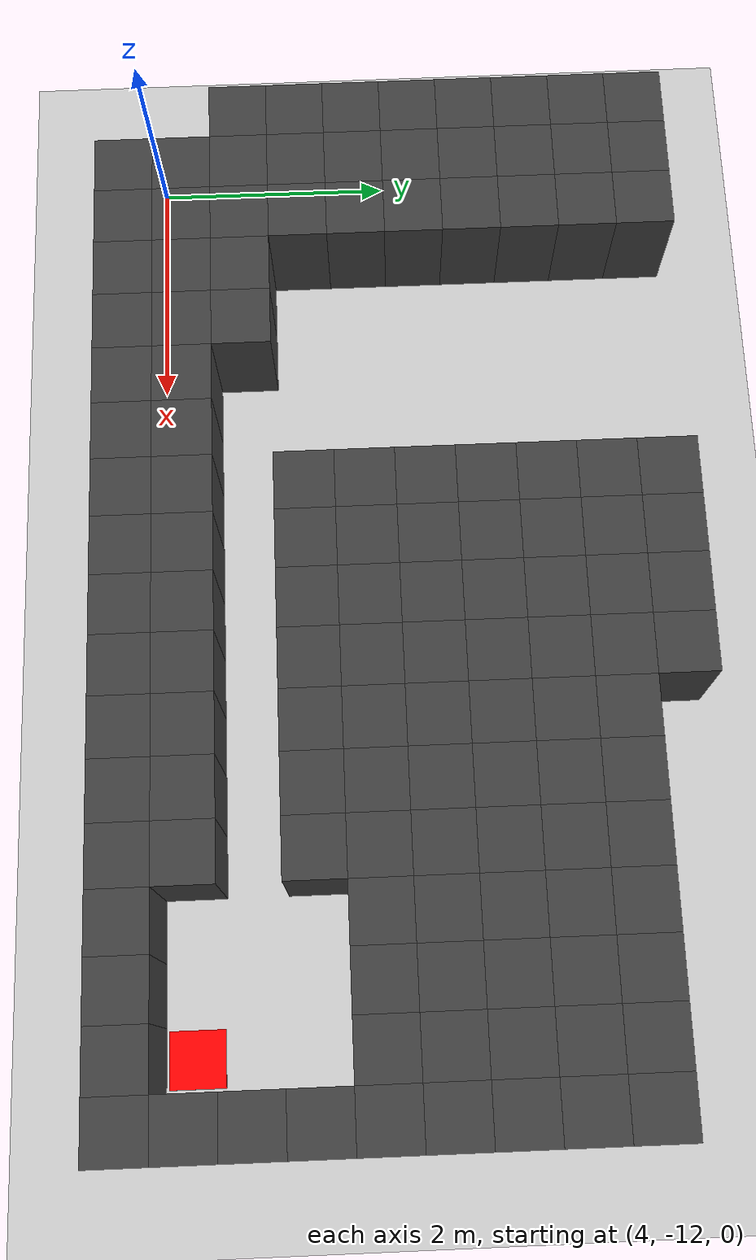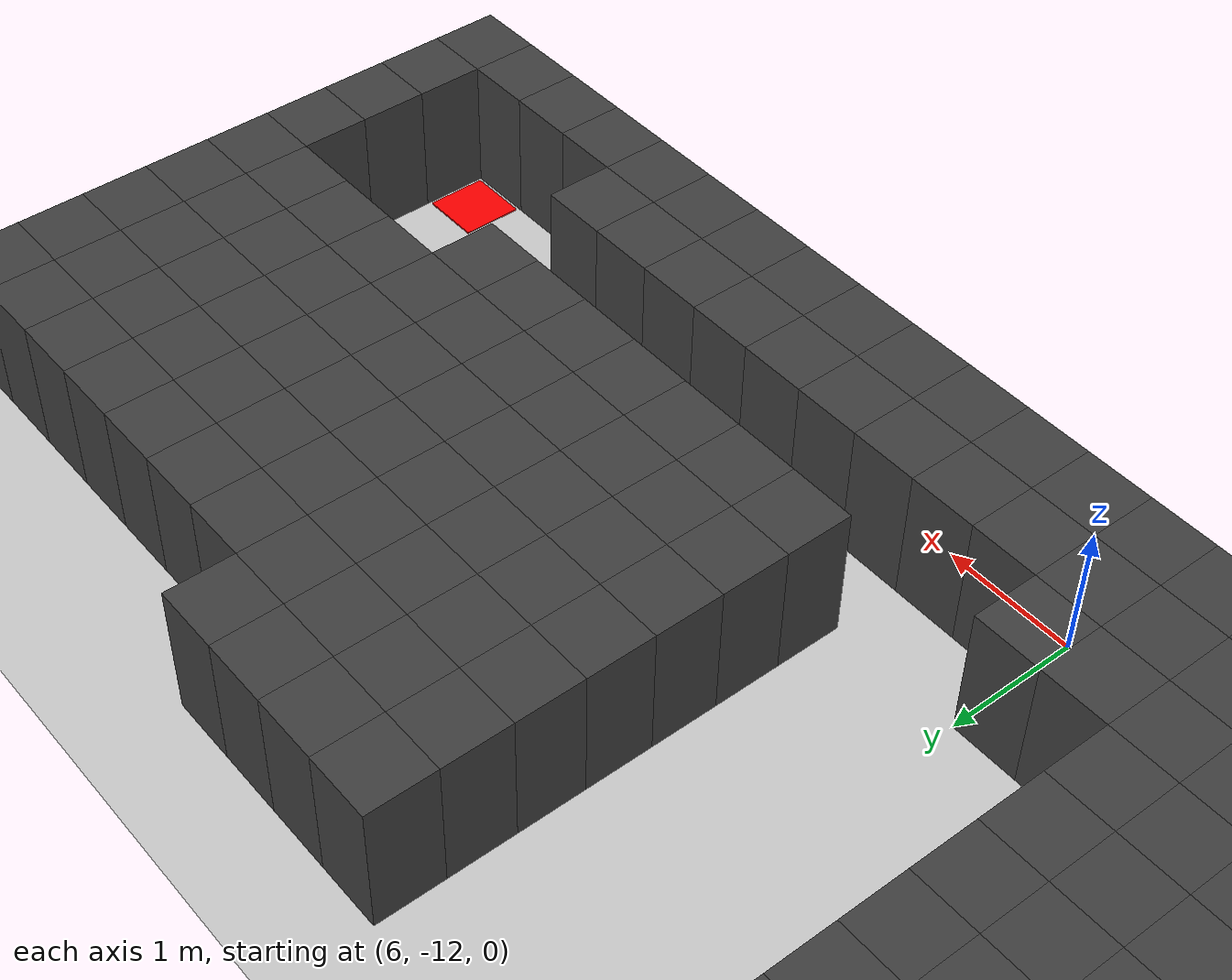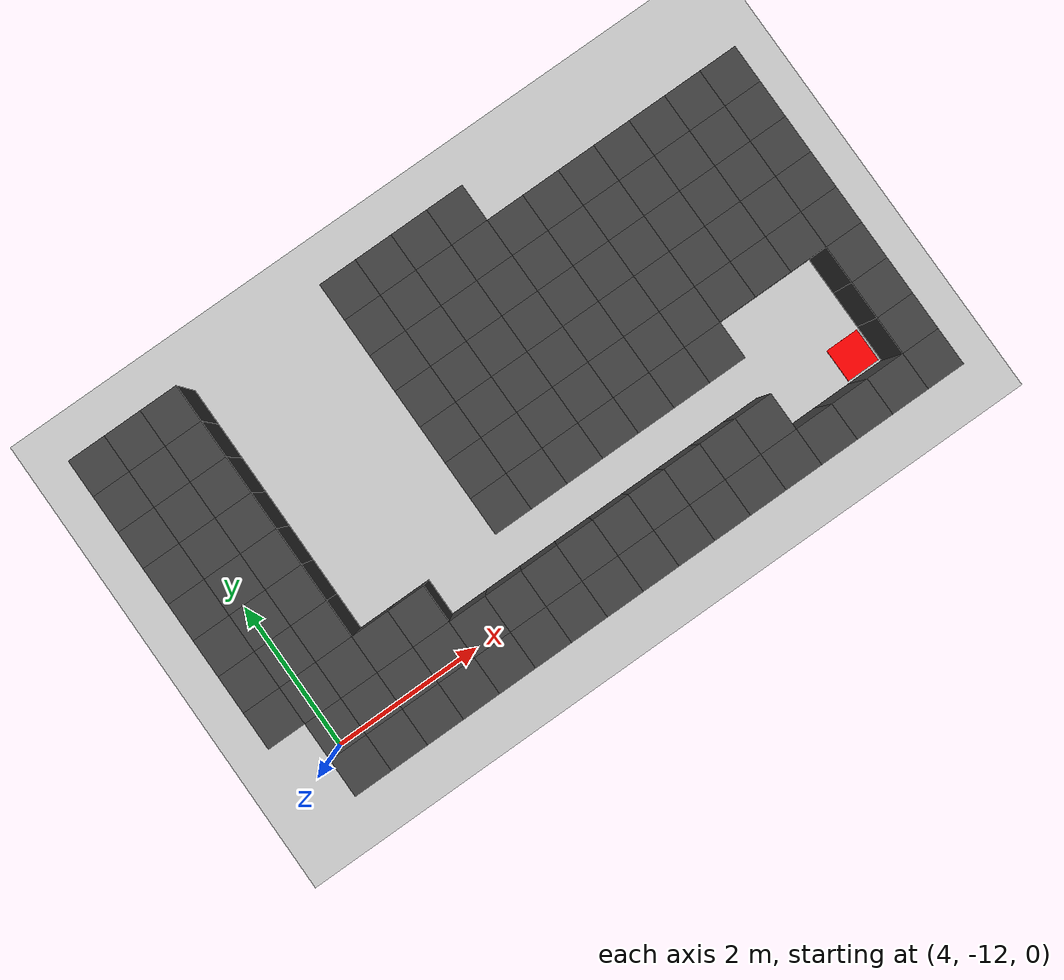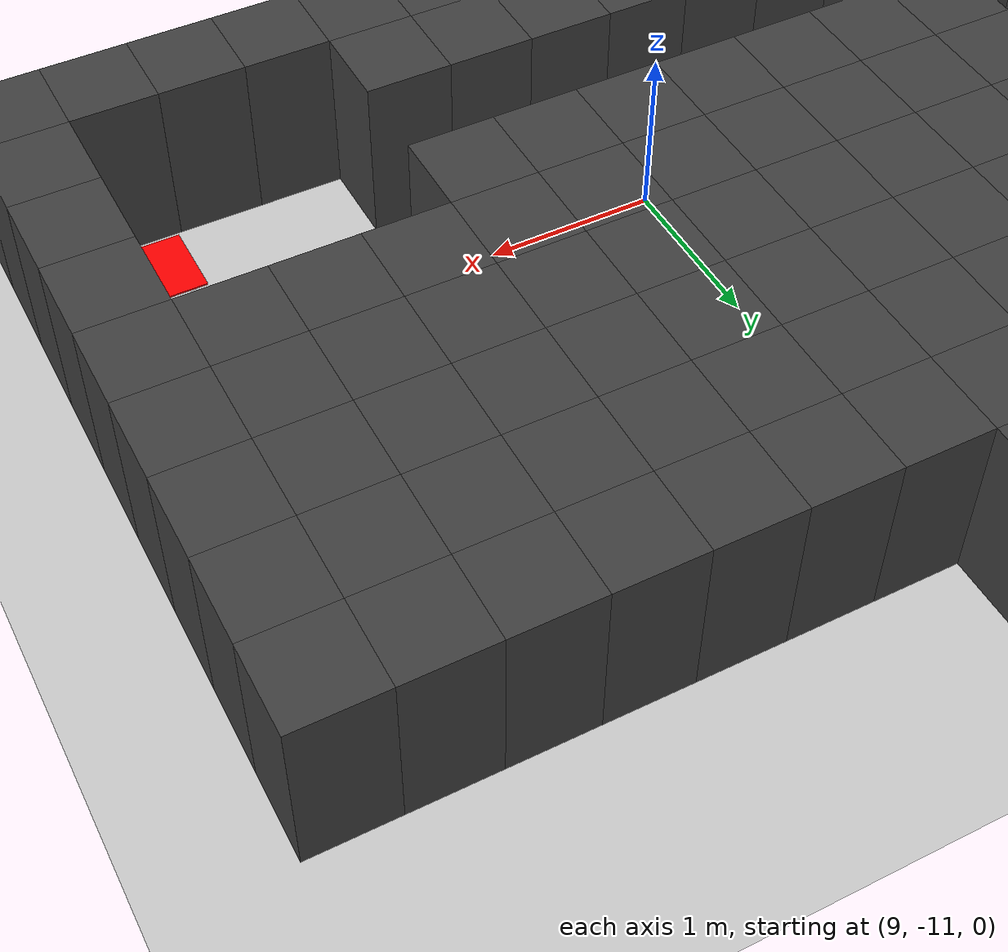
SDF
<sdf version="1.7">
 <world name="map_14190">
  <model name="ground_plane">
   <static>true</static>
   <link name="link">
    <collision name="collision">
     <geometry><plane><normal>0 0 1</normal><size>200 200</size></plane></geometry>
    </collision>
    <visual name="visual">
     <geometry><plane><normal>0 0 1</normal><size>200 200</size></plane></geometry>
     <material><ambient>0.8 0.8 0.8 1</ambient><diffuse>0.8 0.8 0.8 1</diffuse></material>
    </visual>
   </link>
  </model>
  <model name="maze_environment">
   <static>true</static>
   <link name="wall_1435">
    <pose>3.750 -7.750 0.500 0 0 0</pose>
    <collision name="col"><geometry><box><size>0.5 0.5 1.0</size></box></geometry></collision>
    <visual name="vis">
     <geometry><box><size>0.5 0.5 1.0</size></box></geometry>
     <material><ambient>0.15 0.15 0.15 1</ambient><diffuse>0.25 0.25 0.25 1</diffuse></material>
    </visual>
   </link>
   <link name="wall_1436">
    <pose>4.250 -7.750 0.500 0 0 0</pose>
    <collision name="col"><geometry><box><size>0.5 0.5 1.0</size></box></geometry></collision>
    <visual name="vis">
     <geometry><box><size>0.5 0.5 1.0</size></box></geometry>
     <material><ambient>0.15 0.15 0.15 1</ambient><diffuse>0.25 0.25 0.25 1</diffuse></material>
    </visual>
   </link>
   <link name="wall_1437">
    <pose>4.750 -7.750 0.500 0 0 0</pose>
    <collision name="col"><geometry><box><size>0.5 0.5 1.0</size></box></geometry></collision>
    <visual name="vis">
     <geometry><box><size>0.5 0.5 1.0</size></box></geometry>
     <material><ambient>0.15 0.15 0.15 1</ambient><diffuse>0.25 0.25 0.25 1</diffuse></material>
    </visual>
   </link>
   <link name="wall_1438">
    <pose>7.250 -7.750 0.500 0 0 0</pose>
    <collision name="col"><geometry><box><size>0.5 0.5 1.0</size></box></geometry></collision>
    <visual name="vis">
     <geometry><box><size>0.5 0.5 1.0</size></box></geometry>
     <material><ambient>0.15 0.15 0.15 1</ambient><diffuse>0.25 0.25 0.25 1</diffuse></material>
    </visual>
   </link>
   <link name="wall_1439">
    <pose>7.750 -7.750 0.500 0 0 0</pose>
    <collision name="col"><geometry><box><size>0.5 0.5 1.0</size></box></geometry></collision>
    <visual name="vis">
     <geometry><box><size>0.5 0.5 1.0</size></box></geometry>
     <material><ambient>0.15 0.15 0.15 1</ambient><diffuse>0.25 0.25 0.25 1</diffuse></material>
    </visual>
   </link>
   <link name="wall_1440">
    <pose>8.250 -7.750 0.500 0 0 0</pose>
    <collision name="col"><geometry><box><size>0.5 0.5 1.0</size></box></geometry></collision>
    <visual name="vis">
     <geometry><box><size>0.5 0.5 1.0</size></box></geometry>
     <material><ambient>0.15 0.15 0.15 1</ambient><diffuse>0.25 0.25 0.25 1</diffuse></material>
    </visual>
   </link>
   <link name="wall_1441">
    <pose>8.750 -7.750 0.500 0 0 0</pose>
    <collision name="col"><geometry><box><size>0.5 0.5 1.0</size></box></geometry></collision>
    <visual name="vis">
     <geometry><box><size>0.5 0.5 1.0</size></box></geometry>
     <material><ambient>0.15 0.15 0.15 1</ambient><diffuse>0.25 0.25 0.25 1</diffuse></material>
    </visual>
   </link>
   <link name="wall_1468">
    <pose>3.750 -8.250 0.500 0 0 0</pose>
    <collision name="col"><geometry><box><size>0.5 0.5 1.0</size></box></geometry></collision>
    <visual name="vis">
     <geometry><box><size>0.5 0.5 1.0</size></box></geometry>
     <material><ambient>0.15 0.15 0.15 1</ambient><diffuse>0.25 0.25 0.25 1</diffuse></material>
    </visual>
   </link>
   <link name="wall_1469">
    <pose>4.250 -8.250 0.500 0 0 0</pose>
    <collision name="col"><geometry><box><size>0.5 0.5 1.0</size></box></geometry></collision>
    <visual name="vis">
     <geometry><box><size>0.5 0.5 1.0</size></box></geometry>
     <material><ambient>0.15 0.15 0.15 1</ambient><diffuse>0.25 0.25 0.25 1</diffuse></material>
    </visual>
   </link>
   <link name="wall_1470">
    <pose>4.750 -8.250 0.500 0 0 0</pose>
    <collision name="col"><geometry><box><size>0.5 0.5 1.0</size></box></geometry></collision>
    <visual name="vis">
     <geometry><box><size>0.5 0.5 1.0</size></box></geometry>
     <material><ambient>0.15 0.15 0.15 1</ambient><diffuse>0.25 0.25 0.25 1</diffuse></material>
    </visual>
   </link>
   <link name="wall_1471">
    <pose>7.250 -8.250 0.500 0 0 0</pose>
    <collision name="col"><geometry><box><size>0.5 0.5 1.0</size></box></geometry></collision>
    <visual name="vis">
     <geometry><box><size>0.5 0.5 1.0</size></box></geometry>
     <material><ambient>0.15 0.15 0.15 1</ambient><diffuse>0.25 0.25 0.25 1</diffuse></material>
    </visual>
   </link>
   <link name="wall_1472">
    <pose>7.750 -8.250 0.500 0 0 0</pose>
    <collision name="col"><geometry><box><size>0.5 0.5 1.0</size></box></geometry></collision>
    <visual name="vis">
     <geometry><box><size>0.5 0.5 1.0</size></box></geometry>
     <material><ambient>0.15 0.15 0.15 1</ambient><diffuse>0.25 0.25 0.25 1</diffuse></material>
    </visual>
   </link>
   <link name="wall_1473">
    <pose>8.250 -8.250 0.500 0 0 0</pose>
    <collision name="col"><geometry><box><size>0.5 0.5 1.0</size></box></geometry></collision>
    <visual name="vis">
     <geometry><box><size>0.5 0.5 1.0</size></box></geometry>
     <material><ambient>0.15 0.15 0.15 1</ambient><diffuse>0.25 0.25 0.25 1</diffuse></material>
    </visual>
   </link>
   <link name="wall_1474">
    <pose>8.750 -8.250 0.500 0 0 0</pose>
    <collision name="col"><geometry><box><size>0.5 0.5 1.0</size></box></geometry></collision>
    <visual name="vis">
     <geometry><box><size>0.5 0.5 1.0</size></box></geometry>
     <material><ambient>0.15 0.15 0.15 1</ambient><diffuse>0.25 0.25 0.25 1</diffuse></material>
    </visual>
   </link>
   <link name="wall_1475">
    <pose>9.250 -8.250 0.500 0 0 0</pose>
    <collision name="col"><geometry><box><size>0.5 0.5 1.0</size></box></geometry></collision>
    <visual name="vis">
     <geometry><box><size>0.5 0.5 1.0</size></box></geometry>
     <material><ambient>0.15 0.15 0.15 1</ambient><diffuse>0.25 0.25 0.25 1</diffuse></material>
    </visual>
   </link>
   <link name="wall_1476">
    <pose>9.750 -8.250 0.500 0 0 0</pose>
    <collision name="col"><geometry><box><size>0.5 0.5 1.0</size></box></geometry></collision>
    <visual name="vis">
     <geometry><box><size>0.5 0.5 1.0</size></box></geometry>
     <material><ambient>0.15 0.15 0.15 1</ambient><diffuse>0.25 0.25 0.25 1</diffuse></material>
    </visual>
   </link>
   <link name="wall_1477">
    <pose>10.250 -8.250 0.500 0 0 0</pose>
    <collision name="col"><geometry><box><size>0.5 0.5 1.0</size></box></geometry></collision>
    <visual name="vis">
     <geometry><box><size>0.5 0.5 1.0</size></box></geometry>
     <material><ambient>0.15 0.15 0.15 1</ambient><diffuse>0.25 0.25 0.25 1</diffuse></material>
    </visual>
   </link>
   <link name="wall_1478">
    <pose>10.750 -8.250 0.500 0 0 0</pose>
    <collision name="col"><geometry><box><size>0.5 0.5 1.0</size></box></geometry></collision>
    <visual name="vis">
     <geometry><box><size>0.5 0.5 1.0</size></box></geometry>
     <material><ambient>0.15 0.15 0.15 1</ambient><diffuse>0.25 0.25 0.25 1</diffuse></material>
    </visual>
   </link>
   <link name="wall_1479">
    <pose>11.250 -8.250 0.500 0 0 0</pose>
    <collision name="col"><geometry><box><size>0.5 0.5 1.0</size></box></geometry></collision>
    <visual name="vis">
     <geometry><box><size>0.5 0.5 1.0</size></box></geometry>
     <material><ambient>0.15 0.15 0.15 1</ambient><diffuse>0.25 0.25 0.25 1</diffuse></material>
    </visual>
   </link>
   <link name="wall_1480">
    <pose>11.750 -8.250 0.500 0 0 0</pose>
    <collision name="col"><geometry><box><size>0.5 0.5 1.0</size></box></geometry></collision>
    <visual name="vis">
     <geometry><box><size>0.5 0.5 1.0</size></box></geometry>
     <material><ambient>0.15 0.15 0.15 1</ambient><diffuse>0.25 0.25 0.25 1</diffuse></material>
    </visual>
   </link>
   <link name="wall_1481">
    <pose>12.250 -8.250 0.500 0 0 0</pose>
    <collision name="col"><geometry><box><size>0.5 0.5 1.0</size></box></geometry></collision>
    <visual name="vis">
     <geometry><box><size>0.5 0.5 1.0</size></box></geometry>
     <material><ambient>0.15 0.15 0.15 1</ambient><diffuse>0.25 0.25 0.25 1</diffuse></material>
    </visual>
   </link>
   <link name="wall_1507">
    <pose>3.750 -8.750 0.500 0 0 0</pose>
    <collision name="col"><geometry><box><size>0.5 0.5 1.0</size></box></geometry></collision>
    <visual name="vis">
     <geometry><box><size>0.5 0.5 1.0</size></box></geometry>
     <material><ambient>0.15 0.15 0.15 1</ambient><diffuse>0.25 0.25 0.25 1</diffuse></material>
    </visual>
   </link>
   <link name="wall_1508">
    <pose>4.250 -8.750 0.500 0 0 0</pose>
    <collision name="col"><geometry><box><size>0.5 0.5 1.0</size></box></geometry></collision>
    <visual name="vis">
     <geometry><box><size>0.5 0.5 1.0</size></box></geometry>
     <material><ambient>0.15 0.15 0.15 1</ambient><diffuse>0.25 0.25 0.25 1</diffuse></material>
    </visual>
   </link>
   <link name="wall_1509">
    <pose>4.750 -8.750 0.500 0 0 0</pose>
    <collision name="col"><geometry><box><size>0.5 0.5 1.0</size></box></geometry></collision>
    <visual name="vis">
     <geometry><box><size>0.5 0.5 1.0</size></box></geometry>
     <material><ambient>0.15 0.15 0.15 1</ambient><diffuse>0.25 0.25 0.25 1</diffuse></material>
    </visual>
   </link>
   <link name="wall_1510">
    <pose>7.250 -8.750 0.500 0 0 0</pose>
    <collision name="col"><geometry><box><size>0.5 0.5 1.0</size></box></geometry></collision>
    <visual name="vis">
     <geometry><box><size>0.5 0.5 1.0</size></box></geometry>
     <material><ambient>0.15 0.15 0.15 1</ambient><diffuse>0.25 0.25 0.25 1</diffuse></material>
    </visual>
   </link>
   <link name="wall_1511">
    <pose>7.750 -8.750 0.500 0 0 0</pose>
    <collision name="col"><geometry><box><size>0.5 0.5 1.0</size></box></geometry></collision>
    <visual name="vis">
     <geometry><box><size>0.5 0.5 1.0</size></box></geometry>
     <material><ambient>0.15 0.15 0.15 1</ambient><diffuse>0.25 0.25 0.25 1</diffuse></material>
    </visual>
   </link>
   <link name="wall_1512">
    <pose>8.250 -8.750 0.500 0 0 0</pose>
    <collision name="col"><geometry><box><size>0.5 0.5 1.0</size></box></geometry></collision>
    <visual name="vis">
     <geometry><box><size>0.5 0.5 1.0</size></box></geometry>
     <material><ambient>0.15 0.15 0.15 1</ambient><diffuse>0.25 0.25 0.25 1</diffuse></material>
    </visual>
   </link>
   <link name="wall_1513">
    <pose>8.750 -8.750 0.500 0 0 0</pose>
    <collision name="col"><geometry><box><size>0.5 0.5 1.0</size></box></geometry></collision>
    <visual name="vis">
     <geometry><box><size>0.5 0.5 1.0</size></box></geometry>
     <material><ambient>0.15 0.15 0.15 1</ambient><diffuse>0.25 0.25 0.25 1</diffuse></material>
    </visual>
   </link>
   <link name="wall_1514">
    <pose>9.250 -8.750 0.500 0 0 0</pose>
    <collision name="col"><geometry><box><size>0.5 0.5 1.0</size></box></geometry></collision>
    <visual name="vis">
     <geometry><box><size>0.5 0.5 1.0</size></box></geometry>
     <material><ambient>0.15 0.15 0.15 1</ambient><diffuse>0.25 0.25 0.25 1</diffuse></material>
    </visual>
   </link>
   <link name="wall_1515">
    <pose>9.750 -8.750 0.500 0 0 0</pose>
    <collision name="col"><geometry><box><size>0.5 0.5 1.0</size></box></geometry></collision>
    <visual name="vis">
     <geometry><box><size>0.5 0.5 1.0</size></box></geometry>
     <material><ambient>0.15 0.15 0.15 1</ambient><diffuse>0.25 0.25 0.25 1</diffuse></material>
    </visual>
   </link>
   <link name="wall_1516">
    <pose>10.250 -8.750 0.500 0 0 0</pose>
    <collision name="col"><geometry><box><size>0.5 0.5 1.0</size></box></geometry></collision>
    <visual name="vis">
     <geometry><box><size>0.5 0.5 1.0</size></box></geometry>
     <material><ambient>0.15 0.15 0.15 1</ambient><diffuse>0.25 0.25 0.25 1</diffuse></material>
    </visual>
   </link>
   <link name="wall_1517">
    <pose>10.750 -8.750 0.500 0 0 0</pose>
    <collision name="col"><geometry><box><size>0.5 0.5 1.0</size></box></geometry></collision>
    <visual name="vis">
     <geometry><box><size>0.5 0.5 1.0</size></box></geometry>
     <material><ambient>0.15 0.15 0.15 1</ambient><diffuse>0.25 0.25 0.25 1</diffuse></material>
    </visual>
   </link>
   <link name="wall_1518">
    <pose>11.250 -8.750 0.500 0 0 0</pose>
    <collision name="col"><geometry><box><size>0.5 0.5 1.0</size></box></geometry></collision>
    <visual name="vis">
     <geometry><box><size>0.5 0.5 1.0</size></box></geometry>
     <material><ambient>0.15 0.15 0.15 1</ambient><diffuse>0.25 0.25 0.25 1</diffuse></material>
    </visual>
   </link>
   <link name="wall_1519">
    <pose>11.750 -8.750 0.500 0 0 0</pose>
    <collision name="col"><geometry><box><size>0.5 0.5 1.0</size></box></geometry></collision>
    <visual name="vis">
     <geometry><box><size>0.5 0.5 1.0</size></box></geometry>
     <material><ambient>0.15 0.15 0.15 1</ambient><diffuse>0.25 0.25 0.25 1</diffuse></material>
    </visual>
   </link>
   <link name="wall_1520">
    <pose>12.250 -8.750 0.500 0 0 0</pose>
    <collision name="col"><geometry><box><size>0.5 0.5 1.0</size></box></geometry></collision>
    <visual name="vis">
     <geometry><box><size>0.5 0.5 1.0</size></box></geometry>
     <material><ambient>0.15 0.15 0.15 1</ambient><diffuse>0.25 0.25 0.25 1</diffuse></material>
    </visual>
   </link>
   <link name="wall_1540">
    <pose>3.750 -9.250 0.500 0 0 0</pose>
    <collision name="col"><geometry><box><size>0.5 0.5 1.0</size></box></geometry></collision>
    <visual name="vis">
     <geometry><box><size>0.5 0.5 1.0</size></box></geometry>
     <material><ambient>0.15 0.15 0.15 1</ambient><diffuse>0.25 0.25 0.25 1</diffuse></material>
    </visual>
   </link>
   <link name="wall_1541">
    <pose>4.250 -9.250 0.500 0 0 0</pose>
    <collision name="col"><geometry><box><size>0.5 0.5 1.0</size></box></geometry></collision>
    <visual name="vis">
     <geometry><box><size>0.5 0.5 1.0</size></box></geometry>
     <material><ambient>0.15 0.15 0.15 1</ambient><diffuse>0.25 0.25 0.25 1</diffuse></material>
    </visual>
   </link>
   <link name="wall_1542">
    <pose>4.750 -9.250 0.500 0 0 0</pose>
    <collision name="col"><geometry><box><size>0.5 0.5 1.0</size></box></geometry></collision>
    <visual name="vis">
     <geometry><box><size>0.5 0.5 1.0</size></box></geometry>
     <material><ambient>0.15 0.15 0.15 1</ambient><diffuse>0.25 0.25 0.25 1</diffuse></material>
    </visual>
   </link>
   <link name="wall_1543">
    <pose>7.250 -9.250 0.500 0 0 0</pose>
    <collision name="col"><geometry><box><size>0.5 0.5 1.0</size></box></geometry></collision>
    <visual name="vis">
     <geometry><box><size>0.5 0.5 1.0</size></box></geometry>
     <material><ambient>0.15 0.15 0.15 1</ambient><diffuse>0.25 0.25 0.25 1</diffuse></material>
    </visual>
   </link>
   <link name="wall_1544">
    <pose>7.750 -9.250 0.500 0 0 0</pose>
    <collision name="col"><geometry><box><size>0.5 0.5 1.0</size></box></geometry></collision>
    <visual name="vis">
     <geometry><box><size>0.5 0.5 1.0</size></box></geometry>
     <material><ambient>0.15 0.15 0.15 1</ambient><diffuse>0.25 0.25 0.25 1</diffuse></material>
    </visual>
   </link>
   <link name="wall_1545">
    <pose>8.250 -9.250 0.500 0 0 0</pose>
    <collision name="col"><geometry><box><size>0.5 0.5 1.0</size></box></geometry></collision>
    <visual name="vis">
     <geometry><box><size>0.5 0.5 1.0</size></box></geometry>
     <material><ambient>0.15 0.15 0.15 1</ambient><diffuse>0.25 0.25 0.25 1</diffuse></material>
    </visual>
   </link>
   <link name="wall_1546">
    <pose>8.750 -9.250 0.500 0 0 0</pose>
    <collision name="col"><geometry><box><size>0.5 0.5 1.0</size></box></geometry></collision>
    <visual name="vis">
     <geometry><box><size>0.5 0.5 1.0</size></box></geometry>
     <material><ambient>0.15 0.15 0.15 1</ambient><diffuse>0.25 0.25 0.25 1</diffuse></material>
    </visual>
   </link>
   <link name="wall_1547">
    <pose>9.250 -9.250 0.500 0 0 0</pose>
    <collision name="col"><geometry><box><size>0.5 0.5 1.0</size></box></geometry></collision>
    <visual name="vis">
     <geometry><box><size>0.5 0.5 1.0</size></box></geometry>
     <material><ambient>0.15 0.15 0.15 1</ambient><diffuse>0.25 0.25 0.25 1</diffuse></material>
    </visual>
   </link>
   <link name="wall_1548">
    <pose>9.750 -9.250 0.500 0 0 0</pose>
    <collision name="col"><geometry><box><size>0.5 0.5 1.0</size></box></geometry></collision>
    <visual name="vis">
     <geometry><box><size>0.5 0.5 1.0</size></box></geometry>
     <material><ambient>0.15 0.15 0.15 1</ambient><diffuse>0.25 0.25 0.25 1</diffuse></material>
    </visual>
   </link>
   <link name="wall_1549">
    <pose>10.250 -9.250 0.500 0 0 0</pose>
    <collision name="col"><geometry><box><size>0.5 0.5 1.0</size></box></geometry></collision>
    <visual name="vis">
     <geometry><box><size>0.5 0.5 1.0</size></box></geometry>
     <material><ambient>0.15 0.15 0.15 1</ambient><diffuse>0.25 0.25 0.25 1</diffuse></material>
    </visual>
   </link>
   <link name="wall_1550">
    <pose>10.750 -9.250 0.500 0 0 0</pose>
    <collision name="col"><geometry><box><size>0.5 0.5 1.0</size></box></geometry></collision>
    <visual name="vis">
     <geometry><box><size>0.5 0.5 1.0</size></box></geometry>
     <material><ambient>0.15 0.15 0.15 1</ambient><diffuse>0.25 0.25 0.25 1</diffuse></material>
    </visual>
   </link>
   <link name="wall_1551">
    <pose>11.250 -9.250 0.500 0 0 0</pose>
    <collision name="col"><geometry><box><size>0.5 0.5 1.0</size></box></geometry></collision>
    <visual name="vis">
     <geometry><box><size>0.5 0.5 1.0</size></box></geometry>
     <material><ambient>0.15 0.15 0.15 1</ambient><diffuse>0.25 0.25 0.25 1</diffuse></material>
    </visual>
   </link>
   <link name="wall_1552">
    <pose>11.750 -9.250 0.500 0 0 0</pose>
    <collision name="col"><geometry><box><size>0.5 0.5 1.0</size></box></geometry></collision>
    <visual name="vis">
     <geometry><box><size>0.5 0.5 1.0</size></box></geometry>
     <material><ambient>0.15 0.15 0.15 1</ambient><diffuse>0.25 0.25 0.25 1</diffuse></material>
    </visual>
   </link>
   <link name="wall_1553">
    <pose>12.250 -9.250 0.500 0 0 0</pose>
    <collision name="col"><geometry><box><size>0.5 0.5 1.0</size></box></geometry></collision>
    <visual name="vis">
     <geometry><box><size>0.5 0.5 1.0</size></box></geometry>
     <material><ambient>0.15 0.15 0.15 1</ambient><diffuse>0.25 0.25 0.25 1</diffuse></material>
    </visual>
   </link>
   <link name="wall_1572">
    <pose>3.750 -9.750 0.500 0 0 0</pose>
    <collision name="col"><geometry><box><size>0.5 0.5 1.0</size></box></geometry></collision>
    <visual name="vis">
     <geometry><box><size>0.5 0.5 1.0</size></box></geometry>
     <material><ambient>0.15 0.15 0.15 1</ambient><diffuse>0.25 0.25 0.25 1</diffuse></material>
    </visual>
   </link>
   <link name="wall_1573">
    <pose>4.250 -9.750 0.500 0 0 0</pose>
    <collision name="col"><geometry><box><size>0.5 0.5 1.0</size></box></geometry></collision>
    <visual name="vis">
     <geometry><box><size>0.5 0.5 1.0</size></box></geometry>
     <material><ambient>0.15 0.15 0.15 1</ambient><diffuse>0.25 0.25 0.25 1</diffuse></material>
    </visual>
   </link>
   <link name="wall_1574">
    <pose>4.750 -9.750 0.500 0 0 0</pose>
    <collision name="col"><geometry><box><size>0.5 0.5 1.0</size></box></geometry></collision>
    <visual name="vis">
     <geometry><box><size>0.5 0.5 1.0</size></box></geometry>
     <material><ambient>0.15 0.15 0.15 1</ambient><diffuse>0.25 0.25 0.25 1</diffuse></material>
    </visual>
   </link>
   <link name="wall_1575">
    <pose>7.250 -9.750 0.500 0 0 0</pose>
    <collision name="col"><geometry><box><size>0.5 0.5 1.0</size></box></geometry></collision>
    <visual name="vis">
     <geometry><box><size>0.5 0.5 1.0</size></box></geometry>
     <material><ambient>0.15 0.15 0.15 1</ambient><diffuse>0.25 0.25 0.25 1</diffuse></material>
    </visual>
   </link>
   <link name="wall_1576">
    <pose>7.750 -9.750 0.500 0 0 0</pose>
    <collision name="col"><geometry><box><size>0.5 0.5 1.0</size></box></geometry></collision>
    <visual name="vis">
     <geometry><box><size>0.5 0.5 1.0</size></box></geometry>
     <material><ambient>0.15 0.15 0.15 1</ambient><diffuse>0.25 0.25 0.25 1</diffuse></material>
    </visual>
   </link>
   <link name="wall_1577">
    <pose>8.250 -9.750 0.500 0 0 0</pose>
    <collision name="col"><geometry><box><size>0.5 0.5 1.0</size></box></geometry></collision>
    <visual name="vis">
     <geometry><box><size>0.5 0.5 1.0</size></box></geometry>
     <material><ambient>0.15 0.15 0.15 1</ambient><diffuse>0.25 0.25 0.25 1</diffuse></material>
    </visual>
   </link>
   <link name="wall_1578">
    <pose>8.750 -9.750 0.500 0 0 0</pose>
    <collision name="col"><geometry><box><size>0.5 0.5 1.0</size></box></geometry></collision>
    <visual name="vis">
     <geometry><box><size>0.5 0.5 1.0</size></box></geometry>
     <material><ambient>0.15 0.15 0.15 1</ambient><diffuse>0.25 0.25 0.25 1</diffuse></material>
    </visual>
   </link>
   <link name="wall_1579">
    <pose>9.250 -9.750 0.500 0 0 0</pose>
    <collision name="col"><geometry><box><size>0.5 0.5 1.0</size></box></geometry></collision>
    <visual name="vis">
     <geometry><box><size>0.5 0.5 1.0</size></box></geometry>
     <material><ambient>0.15 0.15 0.15 1</ambient><diffuse>0.25 0.25 0.25 1</diffuse></material>
    </visual>
   </link>
   <link name="wall_1580">
    <pose>9.750 -9.750 0.500 0 0 0</pose>
    <collision name="col"><geometry><box><size>0.5 0.5 1.0</size></box></geometry></collision>
    <visual name="vis">
     <geometry><box><size>0.5 0.5 1.0</size></box></geometry>
     <material><ambient>0.15 0.15 0.15 1</ambient><diffuse>0.25 0.25 0.25 1</diffuse></material>
    </visual>
   </link>
   <link name="wall_1581">
    <pose>10.250 -9.750 0.500 0 0 0</pose>
    <collision name="col"><geometry><box><size>0.5 0.5 1.0</size></box></geometry></collision>
    <visual name="vis">
     <geometry><box><size>0.5 0.5 1.0</size></box></geometry>
     <material><ambient>0.15 0.15 0.15 1</ambient><diffuse>0.25 0.25 0.25 1</diffuse></material>
    </visual>
   </link>
   <link name="wall_1582">
    <pose>10.750 -9.750 0.500 0 0 0</pose>
    <collision name="col"><geometry><box><size>0.5 0.5 1.0</size></box></geometry></collision>
    <visual name="vis">
     <geometry><box><size>0.5 0.5 1.0</size></box></geometry>
     <material><ambient>0.15 0.15 0.15 1</ambient><diffuse>0.25 0.25 0.25 1</diffuse></material>
    </visual>
   </link>
   <link name="wall_1583">
    <pose>11.250 -9.750 0.500 0 0 0</pose>
    <collision name="col"><geometry><box><size>0.5 0.5 1.0</size></box></geometry></collision>
    <visual name="vis">
     <geometry><box><size>0.5 0.5 1.0</size></box></geometry>
     <material><ambient>0.15 0.15 0.15 1</ambient><diffuse>0.25 0.25 0.25 1</diffuse></material>
    </visual>
   </link>
   <link name="wall_1584">
    <pose>11.750 -9.750 0.500 0 0 0</pose>
    <collision name="col"><geometry><box><size>0.5 0.5 1.0</size></box></geometry></collision>
    <visual name="vis">
     <geometry><box><size>0.5 0.5 1.0</size></box></geometry>
     <material><ambient>0.15 0.15 0.15 1</ambient><diffuse>0.25 0.25 0.25 1</diffuse></material>
    </visual>
   </link>
   <link name="wall_1585">
    <pose>12.250 -9.750 0.500 0 0 0</pose>
    <collision name="col"><geometry><box><size>0.5 0.5 1.0</size></box></geometry></collision>
    <visual name="vis">
     <geometry><box><size>0.5 0.5 1.0</size></box></geometry>
     <material><ambient>0.15 0.15 0.15 1</ambient><diffuse>0.25 0.25 0.25 1</diffuse></material>
    </visual>
   </link>
   <link name="wall_1605">
    <pose>3.750 -10.250 0.500 0 0 0</pose>
    <collision name="col"><geometry><box><size>0.5 0.5 1.0</size></box></geometry></collision>
    <visual name="vis">
     <geometry><box><size>0.5 0.5 1.0</size></box></geometry>
     <material><ambient>0.15 0.15 0.15 1</ambient><diffuse>0.25 0.25 0.25 1</diffuse></material>
    </visual>
   </link>
   <link name="wall_1606">
    <pose>4.250 -10.250 0.500 0 0 0</pose>
    <collision name="col"><geometry><box><size>0.5 0.5 1.0</size></box></geometry></collision>
    <visual name="vis">
     <geometry><box><size>0.5 0.5 1.0</size></box></geometry>
     <material><ambient>0.15 0.15 0.15 1</ambient><diffuse>0.25 0.25 0.25 1</diffuse></material>
    </visual>
   </link>
   <link name="wall_1607">
    <pose>4.750 -10.250 0.500 0 0 0</pose>
    <collision name="col"><geometry><box><size>0.5 0.5 1.0</size></box></geometry></collision>
    <visual name="vis">
     <geometry><box><size>0.5 0.5 1.0</size></box></geometry>
     <material><ambient>0.15 0.15 0.15 1</ambient><diffuse>0.25 0.25 0.25 1</diffuse></material>
    </visual>
   </link>
   <link name="wall_1608">
    <pose>7.250 -10.250 0.500 0 0 0</pose>
    <collision name="col"><geometry><box><size>0.5 0.5 1.0</size></box></geometry></collision>
    <visual name="vis">
     <geometry><box><size>0.5 0.5 1.0</size></box></geometry>
     <material><ambient>0.15 0.15 0.15 1</ambient><diffuse>0.25 0.25 0.25 1</diffuse></material>
    </visual>
   </link>
   <link name="wall_1609">
    <pose>7.750 -10.250 0.500 0 0 0</pose>
    <collision name="col"><geometry><box><size>0.5 0.5 1.0</size></box></geometry></collision>
    <visual name="vis">
     <geometry><box><size>0.5 0.5 1.0</size></box></geometry>
     <material><ambient>0.15 0.15 0.15 1</ambient><diffuse>0.25 0.25 0.25 1</diffuse></material>
    </visual>
   </link>
   <link name="wall_1610">
    <pose>8.250 -10.250 0.500 0 0 0</pose>
    <collision name="col"><geometry><box><size>0.5 0.5 1.0</size></box></geometry></collision>
    <visual name="vis">
     <geometry><box><size>0.5 0.5 1.0</size></box></geometry>
     <material><ambient>0.15 0.15 0.15 1</ambient><diffuse>0.25 0.25 0.25 1</diffuse></material>
    </visual>
   </link>
   <link name="wall_1611">
    <pose>8.750 -10.250 0.500 0 0 0</pose>
    <collision name="col"><geometry><box><size>0.5 0.5 1.0</size></box></geometry></collision>
    <visual name="vis">
     <geometry><box><size>0.5 0.5 1.0</size></box></geometry>
     <material><ambient>0.15 0.15 0.15 1</ambient><diffuse>0.25 0.25 0.25 1</diffuse></material>
    </visual>
   </link>
   <link name="wall_1612">
    <pose>9.250 -10.250 0.500 0 0 0</pose>
    <collision name="col"><geometry><box><size>0.5 0.5 1.0</size></box></geometry></collision>
    <visual name="vis">
     <geometry><box><size>0.5 0.5 1.0</size></box></geometry>
     <material><ambient>0.15 0.15 0.15 1</ambient><diffuse>0.25 0.25 0.25 1</diffuse></material>
    </visual>
   </link>
   <link name="wall_1613">
    <pose>9.750 -10.250 0.500 0 0 0</pose>
    <collision name="col"><geometry><box><size>0.5 0.5 1.0</size></box></geometry></collision>
    <visual name="vis">
     <geometry><box><size>0.5 0.5 1.0</size></box></geometry>
     <material><ambient>0.15 0.15 0.15 1</ambient><diffuse>0.25 0.25 0.25 1</diffuse></material>
    </visual>
   </link>
   <link name="wall_1614">
    <pose>10.250 -10.250 0.500 0 0 0</pose>
    <collision name="col"><geometry><box><size>0.5 0.5 1.0</size></box></geometry></collision>
    <visual name="vis">
     <geometry><box><size>0.5 0.5 1.0</size></box></geometry>
     <material><ambient>0.15 0.15 0.15 1</ambient><diffuse>0.25 0.25 0.25 1</diffuse></material>
    </visual>
   </link>
   <link name="wall_1615">
    <pose>10.750 -10.250 0.500 0 0 0</pose>
    <collision name="col"><geometry><box><size>0.5 0.5 1.0</size></box></geometry></collision>
    <visual name="vis">
     <geometry><box><size>0.5 0.5 1.0</size></box></geometry>
     <material><ambient>0.15 0.15 0.15 1</ambient><diffuse>0.25 0.25 0.25 1</diffuse></material>
    </visual>
   </link>
   <link name="wall_1616">
    <pose>11.250 -10.250 0.500 0 0 0</pose>
    <collision name="col"><geometry><box><size>0.5 0.5 1.0</size></box></geometry></collision>
    <visual name="vis">
     <geometry><box><size>0.5 0.5 1.0</size></box></geometry>
     <material><ambient>0.15 0.15 0.15 1</ambient><diffuse>0.25 0.25 0.25 1</diffuse></material>
    </visual>
   </link>
   <link name="wall_1617">
    <pose>11.750 -10.250 0.500 0 0 0</pose>
    <collision name="col"><geometry><box><size>0.5 0.5 1.0</size></box></geometry></collision>
    <visual name="vis">
     <geometry><box><size>0.5 0.5 1.0</size></box></geometry>
     <material><ambient>0.15 0.15 0.15 1</ambient><diffuse>0.25 0.25 0.25 1</diffuse></material>
    </visual>
   </link>
   <link name="wall_1618">
    <pose>12.250 -10.250 0.500 0 0 0</pose>
    <collision name="col"><geometry><box><size>0.5 0.5 1.0</size></box></geometry></collision>
    <visual name="vis">
     <geometry><box><size>0.5 0.5 1.0</size></box></geometry>
     <material><ambient>0.15 0.15 0.15 1</ambient><diffuse>0.25 0.25 0.25 1</diffuse></material>
    </visual>
   </link>
   <link name="wall_1638">
    <pose>3.750 -10.750 0.500 0 0 0</pose>
    <collision name="col"><geometry><box><size>0.5 0.5 1.0</size></box></geometry></collision>
    <visual name="vis">
     <geometry><box><size>0.5 0.5 1.0</size></box></geometry>
     <material><ambient>0.15 0.15 0.15 1</ambient><diffuse>0.25 0.25 0.25 1</diffuse></material>
    </visual>
   </link>
   <link name="wall_1639">
    <pose>4.250 -10.750 0.500 0 0 0</pose>
    <collision name="col"><geometry><box><size>0.5 0.5 1.0</size></box></geometry></collision>
    <visual name="vis">
     <geometry><box><size>0.5 0.5 1.0</size></box></geometry>
     <material><ambient>0.15 0.15 0.15 1</ambient><diffuse>0.25 0.25 0.25 1</diffuse></material>
    </visual>
   </link>
   <link name="wall_1640">
    <pose>4.750 -10.750 0.500 0 0 0</pose>
    <collision name="col"><geometry><box><size>0.5 0.5 1.0</size></box></geometry></collision>
    <visual name="vis">
     <geometry><box><size>0.5 0.5 1.0</size></box></geometry>
     <material><ambient>0.15 0.15 0.15 1</ambient><diffuse>0.25 0.25 0.25 1</diffuse></material>
    </visual>
   </link>
   <link name="wall_1641">
    <pose>7.250 -10.750 0.500 0 0 0</pose>
    <collision name="col"><geometry><box><size>0.5 0.5 1.0</size></box></geometry></collision>
    <visual name="vis">
     <geometry><box><size>0.5 0.5 1.0</size></box></geometry>
     <material><ambient>0.15 0.15 0.15 1</ambient><diffuse>0.25 0.25 0.25 1</diffuse></material>
    </visual>
   </link>
   <link name="wall_1642">
    <pose>7.750 -10.750 0.500 0 0 0</pose>
    <collision name="col"><geometry><box><size>0.5 0.5 1.0</size></box></geometry></collision>
    <visual name="vis">
     <geometry><box><size>0.5 0.5 1.0</size></box></geometry>
     <material><ambient>0.15 0.15 0.15 1</ambient><diffuse>0.25 0.25 0.25 1</diffuse></material>
    </visual>
   </link>
   <link name="wall_1643">
    <pose>8.250 -10.750 0.500 0 0 0</pose>
    <collision name="col"><geometry><box><size>0.5 0.5 1.0</size></box></geometry></collision>
    <visual name="vis">
     <geometry><box><size>0.5 0.5 1.0</size></box></geometry>
     <material><ambient>0.15 0.15 0.15 1</ambient><diffuse>0.25 0.25 0.25 1</diffuse></material>
    </visual>
   </link>
   <link name="wall_1644">
    <pose>8.750 -10.750 0.500 0 0 0</pose>
    <collision name="col"><geometry><box><size>0.5 0.5 1.0</size></box></geometry></collision>
    <visual name="vis">
     <geometry><box><size>0.5 0.5 1.0</size></box></geometry>
     <material><ambient>0.15 0.15 0.15 1</ambient><diffuse>0.25 0.25 0.25 1</diffuse></material>
    </visual>
   </link>
   <link name="wall_1645">
    <pose>9.250 -10.750 0.500 0 0 0</pose>
    <collision name="col"><geometry><box><size>0.5 0.5 1.0</size></box></geometry></collision>
    <visual name="vis">
     <geometry><box><size>0.5 0.5 1.0</size></box></geometry>
     <material><ambient>0.15 0.15 0.15 1</ambient><diffuse>0.25 0.25 0.25 1</diffuse></material>
    </visual>
   </link>
   <link name="wall_1646">
    <pose>9.750 -10.750 0.500 0 0 0</pose>
    <collision name="col"><geometry><box><size>0.5 0.5 1.0</size></box></geometry></collision>
    <visual name="vis">
     <geometry><box><size>0.5 0.5 1.0</size></box></geometry>
     <material><ambient>0.15 0.15 0.15 1</ambient><diffuse>0.25 0.25 0.25 1</diffuse></material>
    </visual>
   </link>
   <link name="wall_1647">
    <pose>10.250 -10.750 0.500 0 0 0</pose>
    <collision name="col"><geometry><box><size>0.5 0.5 1.0</size></box></geometry></collision>
    <visual name="vis">
     <geometry><box><size>0.5 0.5 1.0</size></box></geometry>
     <material><ambient>0.15 0.15 0.15 1</ambient><diffuse>0.25 0.25 0.25 1</diffuse></material>
    </visual>
   </link>
   <link name="wall_1648">
    <pose>12.250 -10.750 0.500 0 0 0</pose>
    <collision name="col"><geometry><box><size>0.5 0.5 1.0</size></box></geometry></collision>
    <visual name="vis">
     <geometry><box><size>0.5 0.5 1.0</size></box></geometry>
     <material><ambient>0.15 0.15 0.15 1</ambient><diffuse>0.25 0.25 0.25 1</diffuse></material>
    </visual>
   </link>
   <link name="wall_1668">
    <pose>3.750 -11.250 0.500 0 0 0</pose>
    <collision name="col"><geometry><box><size>0.5 0.5 1.0</size></box></geometry></collision>
    <visual name="vis">
     <geometry><box><size>0.5 0.5 1.0</size></box></geometry>
     <material><ambient>0.15 0.15 0.15 1</ambient><diffuse>0.25 0.25 0.25 1</diffuse></material>
    </visual>
   </link>
   <link name="wall_1669">
    <pose>4.250 -11.250 0.500 0 0 0</pose>
    <collision name="col"><geometry><box><size>0.5 0.5 1.0</size></box></geometry></collision>
    <visual name="vis">
     <geometry><box><size>0.5 0.5 1.0</size></box></geometry>
     <material><ambient>0.15 0.15 0.15 1</ambient><diffuse>0.25 0.25 0.25 1</diffuse></material>
    </visual>
   </link>
   <link name="wall_1670">
    <pose>4.750 -11.250 0.500 0 0 0</pose>
    <collision name="col"><geometry><box><size>0.5 0.5 1.0</size></box></geometry></collision>
    <visual name="vis">
     <geometry><box><size>0.5 0.5 1.0</size></box></geometry>
     <material><ambient>0.15 0.15 0.15 1</ambient><diffuse>0.25 0.25 0.25 1</diffuse></material>
    </visual>
   </link>
   <link name="wall_1671">
    <pose>5.250 -11.250 0.500 0 0 0</pose>
    <collision name="col"><geometry><box><size>0.5 0.5 1.0</size></box></geometry></collision>
    <visual name="vis">
     <geometry><box><size>0.5 0.5 1.0</size></box></geometry>
     <material><ambient>0.15 0.15 0.15 1</ambient><diffuse>0.25 0.25 0.25 1</diffuse></material>
    </visual>
   </link>
   <link name="wall_1672">
    <pose>5.750 -11.250 0.500 0 0 0</pose>
    <collision name="col"><geometry><box><size>0.5 0.5 1.0</size></box></geometry></collision>
    <visual name="vis">
     <geometry><box><size>0.5 0.5 1.0</size></box></geometry>
     <material><ambient>0.15 0.15 0.15 1</ambient><diffuse>0.25 0.25 0.25 1</diffuse></material>
    </visual>
   </link>
   <link name="wall_1673">
    <pose>12.250 -11.250 0.500 0 0 0</pose>
    <collision name="col"><geometry><box><size>0.5 0.5 1.0</size></box></geometry></collision>
    <visual name="vis">
     <geometry><box><size>0.5 0.5 1.0</size></box></geometry>
     <material><ambient>0.15 0.15 0.15 1</ambient><diffuse>0.25 0.25 0.25 1</diffuse></material>
    </visual>
   </link>
   <link name="wall_1700">
    <pose>4.250 -11.750 0.500 0 0 0</pose>
    <collision name="col"><geometry><box><size>0.5 0.5 1.0</size></box></geometry></collision>
    <visual name="vis">
     <geometry><box><size>0.5 0.5 1.0</size></box></geometry>
     <material><ambient>0.15 0.15 0.15 1</ambient><diffuse>0.25 0.25 0.25 1</diffuse></material>
    </visual>
   </link>
   <link name="wall_1701">
    <pose>4.750 -11.750 0.500 0 0 0</pose>
    <collision name="col"><geometry><box><size>0.5 0.5 1.0</size></box></geometry></collision>
    <visual name="vis">
     <geometry><box><size>0.5 0.5 1.0</size></box></geometry>
     <material><ambient>0.15 0.15 0.15 1</ambient><diffuse>0.25 0.25 0.25 1</diffuse></material>
    </visual>
   </link>
   <link name="wall_1702">
    <pose>5.250 -11.750 0.500 0 0 0</pose>
    <collision name="col"><geometry><box><size>0.5 0.5 1.0</size></box></geometry></collision>
    <visual name="vis">
     <geometry><box><size>0.5 0.5 1.0</size></box></geometry>
     <material><ambient>0.15 0.15 0.15 1</ambient><diffuse>0.25 0.25 0.25 1</diffuse></material>
    </visual>
   </link>
   <link name="wall_1703">
    <pose>5.750 -11.750 0.500 0 0 0</pose>
    <collision name="col"><geometry><box><size>0.5 0.5 1.0</size></box></geometry></collision>
    <visual name="vis">
     <geometry><box><size>0.5 0.5 1.0</size></box></geometry>
     <material><ambient>0.15 0.15 0.15 1</ambient><diffuse>0.25 0.25 0.25 1</diffuse></material>
    </visual>
   </link>
   <link name="wall_1704">
    <pose>6.250 -11.750 0.500 0 0 0</pose>
    <collision name="col"><geometry><box><size>0.5 0.5 1.0</size></box></geometry></collision>
    <visual name="vis">
     <geometry><box><size>0.5 0.5 1.0</size></box></geometry>
     <material><ambient>0.15 0.15 0.15 1</ambient><diffuse>0.25 0.25 0.25 1</diffuse></material>
    </visual>
   </link>
   <link name="wall_1705">
    <pose>6.750 -11.750 0.500 0 0 0</pose>
    <collision name="col"><geometry><box><size>0.5 0.5 1.0</size></box></geometry></collision>
    <visual name="vis">
     <geometry><box><size>0.5 0.5 1.0</size></box></geometry>
     <material><ambient>0.15 0.15 0.15 1</ambient><diffuse>0.25 0.25 0.25 1</diffuse></material>
    </visual>
   </link>
   <link name="wall_1706">
    <pose>7.250 -11.750 0.500 0 0 0</pose>
    <collision name="col"><geometry><box><size>0.5 0.5 1.0</size></box></geometry></collision>
    <visual name="vis">
     <geometry><box><size>0.5 0.5 1.0</size></box></geometry>
     <material><ambient>0.15 0.15 0.15 1</ambient><diffuse>0.25 0.25 0.25 1</diffuse></material>
    </visual>
   </link>
   <link name="wall_1707">
    <pose>7.750 -11.750 0.500 0 0 0</pose>
    <collision name="col"><geometry><box><size>0.5 0.5 1.0</size></box></geometry></collision>
    <visual name="vis">
     <geometry><box><size>0.5 0.5 1.0</size></box></geometry>
     <material><ambient>0.15 0.15 0.15 1</ambient><diffuse>0.25 0.25 0.25 1</diffuse></material>
    </visual>
   </link>
   <link name="wall_1708">
    <pose>8.250 -11.750 0.500 0 0 0</pose>
    <collision name="col"><geometry><box><size>0.5 0.5 1.0</size></box></geometry></collision>
    <visual name="vis">
     <geometry><box><size>0.5 0.5 1.0</size></box></geometry>
     <material><ambient>0.15 0.15 0.15 1</ambient><diffuse>0.25 0.25 0.25 1</diffuse></material>
    </visual>
   </link>
   <link name="wall_1709">
    <pose>8.750 -11.750 0.500 0 0 0</pose>
    <collision name="col"><geometry><box><size>0.5 0.5 1.0</size></box></geometry></collision>
    <visual name="vis">
     <geometry><box><size>0.5 0.5 1.0</size></box></geometry>
     <material><ambient>0.15 0.15 0.15 1</ambient><diffuse>0.25 0.25 0.25 1</diffuse></material>
    </visual>
   </link>
   <link name="wall_1710">
    <pose>9.250 -11.750 0.500 0 0 0</pose>
    <collision name="col"><geometry><box><size>0.5 0.5 1.0</size></box></geometry></collision>
    <visual name="vis">
     <geometry><box><size>0.5 0.5 1.0</size></box></geometry>
     <material><ambient>0.15 0.15 0.15 1</ambient><diffuse>0.25 0.25 0.25 1</diffuse></material>
    </visual>
   </link>
   <link name="wall_1711">
    <pose>9.750 -11.750 0.500 0 0 0</pose>
    <collision name="col"><geometry><box><size>0.5 0.5 1.0</size></box></geometry></collision>
    <visual name="vis">
     <geometry><box><size>0.5 0.5 1.0</size></box></geometry>
     <material><ambient>0.15 0.15 0.15 1</ambient><diffuse>0.25 0.25 0.25 1</diffuse></material>
    </visual>
   </link>
   <link name="wall_1712">
    <pose>10.250 -11.750 0.500 0 0 0</pose>
    <collision name="col"><geometry><box><size>0.5 0.5 1.0</size></box></geometry></collision>
    <visual name="vis">
     <geometry><box><size>0.5 0.5 1.0</size></box></geometry>
     <material><ambient>0.15 0.15 0.15 1</ambient><diffuse>0.25 0.25 0.25 1</diffuse></material>
    </visual>
   </link>
   <link name="wall_1713">
    <pose>12.250 -11.750 0.500 0 0 0</pose>
    <collision name="col"><geometry><box><size>0.5 0.5 1.0</size></box></geometry></collision>
    <visual name="vis">
     <geometry><box><size>0.5 0.5 1.0</size></box></geometry>
     <material><ambient>0.15 0.15 0.15 1</ambient><diffuse>0.25 0.25 0.25 1</diffuse></material>
    </visual>
   </link>
   <link name="wall_1747">
    <pose>4.250 -12.250 0.500 0 0 0</pose>
    <collision name="col"><geometry><box><size>0.5 0.5 1.0</size></box></geometry></collision>
    <visual name="vis">
     <geometry><box><size>0.5 0.5 1.0</size></box></geometry>
     <material><ambient>0.15 0.15 0.15 1</ambient><diffuse>0.25 0.25 0.25 1</diffuse></material>
    </visual>
   </link>
   <link name="wall_1748">
    <pose>4.750 -12.250 0.500 0 0 0</pose>
    <collision name="col"><geometry><box><size>0.5 0.5 1.0</size></box></geometry></collision>
    <visual name="vis">
     <geometry><box><size>0.5 0.5 1.0</size></box></geometry>
     <material><ambient>0.15 0.15 0.15 1</ambient><diffuse>0.25 0.25 0.25 1</diffuse></material>
    </visual>
   </link>
   <link name="wall_1749">
    <pose>5.250 -12.250 0.500 0 0 0</pose>
    <collision name="col"><geometry><box><size>0.5 0.5 1.0</size></box></geometry></collision>
    <visual name="vis">
     <geometry><box><size>0.5 0.5 1.0</size></box></geometry>
     <material><ambient>0.15 0.15 0.15 1</ambient><diffuse>0.25 0.25 0.25 1</diffuse></material>
    </visual>
   </link>
   <link name="wall_1750">
    <pose>5.750 -12.250 0.500 0 0 0</pose>
    <collision name="col"><geometry><box><size>0.5 0.5 1.0</size></box></geometry></collision>
    <visual name="vis">
     <geometry><box><size>0.5 0.5 1.0</size></box></geometry>
     <material><ambient>0.15 0.15 0.15 1</ambient><diffuse>0.25 0.25 0.25 1</diffuse></material>
    </visual>
   </link>
   <link name="wall_1751">
    <pose>6.250 -12.250 0.500 0 0 0</pose>
    <collision name="col"><geometry><box><size>0.5 0.5 1.0</size></box></geometry></collision>
    <visual name="vis">
     <geometry><box><size>0.5 0.5 1.0</size></box></geometry>
     <material><ambient>0.15 0.15 0.15 1</ambient><diffuse>0.25 0.25 0.25 1</diffuse></material>
    </visual>
   </link>
   <link name="wall_1752">
    <pose>6.750 -12.250 0.500 0 0 0</pose>
    <collision name="col"><geometry><box><size>0.5 0.5 1.0</size></box></geometry></collision>
    <visual name="vis">
     <geometry><box><size>0.5 0.5 1.0</size></box></geometry>
     <material><ambient>0.15 0.15 0.15 1</ambient><diffuse>0.25 0.25 0.25 1</diffuse></material>
    </visual>
   </link>
   <link name="wall_1753">
    <pose>7.250 -12.250 0.500 0 0 0</pose>
    <collision name="col"><geometry><box><size>0.5 0.5 1.0</size></box></geometry></collision>
    <visual name="vis">
     <geometry><box><size>0.5 0.5 1.0</size></box></geometry>
     <material><ambient>0.15 0.15 0.15 1</ambient><diffuse>0.25 0.25 0.25 1</diffuse></material>
    </visual>
   </link>
   <link name="wall_1754">
    <pose>7.750 -12.250 0.500 0 0 0</pose>
    <collision name="col"><geometry><box><size>0.5 0.5 1.0</size></box></geometry></collision>
    <visual name="vis">
     <geometry><box><size>0.5 0.5 1.0</size></box></geometry>
     <material><ambient>0.15 0.15 0.15 1</ambient><diffuse>0.25 0.25 0.25 1</diffuse></material>
    </visual>
   </link>
   <link name="wall_1755">
    <pose>8.250 -12.250 0.500 0 0 0</pose>
    <collision name="col"><geometry><box><size>0.5 0.5 1.0</size></box></geometry></collision>
    <visual name="vis">
     <geometry><box><size>0.5 0.5 1.0</size></box></geometry>
     <material><ambient>0.15 0.15 0.15 1</ambient><diffuse>0.25 0.25 0.25 1</diffuse></material>
    </visual>
   </link>
   <link name="wall_1756">
    <pose>8.750 -12.250 0.500 0 0 0</pose>
    <collision name="col"><geometry><box><size>0.5 0.5 1.0</size></box></geometry></collision>
    <visual name="vis">
     <geometry><box><size>0.5 0.5 1.0</size></box></geometry>
     <material><ambient>0.15 0.15 0.15 1</ambient><diffuse>0.25 0.25 0.25 1</diffuse></material>
    </visual>
   </link>
   <link name="wall_1757">
    <pose>9.250 -12.250 0.500 0 0 0</pose>
    <collision name="col"><geometry><box><size>0.5 0.5 1.0</size></box></geometry></collision>
    <visual name="vis">
     <geometry><box><size>0.5 0.5 1.0</size></box></geometry>
     <material><ambient>0.15 0.15 0.15 1</ambient><diffuse>0.25 0.25 0.25 1</diffuse></material>
    </visual>
   </link>
   <link name="wall_1758">
    <pose>9.750 -12.250 0.500 0 0 0</pose>
    <collision name="col"><geometry><box><size>0.5 0.5 1.0</size></box></geometry></collision>
    <visual name="vis">
     <geometry><box><size>0.5 0.5 1.0</size></box></geometry>
     <material><ambient>0.15 0.15 0.15 1</ambient><diffuse>0.25 0.25 0.25 1</diffuse></material>
    </visual>
   </link>
   <link name="wall_1759">
    <pose>10.250 -12.250 0.500 0 0 0</pose>
    <collision name="col"><geometry><box><size>0.5 0.5 1.0</size></box></geometry></collision>
    <visual name="vis">
     <geometry><box><size>0.5 0.5 1.0</size></box></geometry>
     <material><ambient>0.15 0.15 0.15 1</ambient><diffuse>0.25 0.25 0.25 1</diffuse></material>
    </visual>
   </link>
   <link name="wall_1760">
    <pose>10.750 -12.250 0.500 0 0 0</pose>
    <collision name="col"><geometry><box><size>0.5 0.5 1.0</size></box></geometry></collision>
    <visual name="vis">
     <geometry><box><size>0.5 0.5 1.0</size></box></geometry>
     <material><ambient>0.15 0.15 0.15 1</ambient><diffuse>0.25 0.25 0.25 1</diffuse></material>
    </visual>
   </link>
   <link name="wall_1761">
    <pose>11.250 -12.250 0.500 0 0 0</pose>
    <collision name="col"><geometry><box><size>0.5 0.5 1.0</size></box></geometry></collision>
    <visual name="vis">
     <geometry><box><size>0.5 0.5 1.0</size></box></geometry>
     <material><ambient>0.15 0.15 0.15 1</ambient><diffuse>0.25 0.25 0.25 1</diffuse></material>
    </visual>
   </link>
   <link name="wall_1762">
    <pose>11.750 -12.250 0.500 0 0 0</pose>
    <collision name="col"><geometry><box><size>0.5 0.5 1.0</size></box></geometry></collision>
    <visual name="vis">
     <geometry><box><size>0.5 0.5 1.0</size></box></geometry>
     <material><ambient>0.15 0.15 0.15 1</ambient><diffuse>0.25 0.25 0.25 1</diffuse></material>
    </visual>
   </link>
   <link name="wall_1763">
    <pose>12.250 -12.250 0.500 0 0 0</pose>
    <collision name="col"><geometry><box><size>0.5 0.5 1.0</size></box></geometry></collision>
    <visual name="vis">
     <geometry><box><size>0.5 0.5 1.0</size></box></geometry>
     <material><ambient>0.15 0.15 0.15 1</ambient><diffuse>0.25 0.25 0.25 1</diffuse></material>
    </visual>
   </link>
   <link name="goal_zone">
    <pose>11.750 -11.750 0.005 0 0 0</pose>
    <visual name="vis">
     <geometry><box><size>0.45 0.45 0.01</size></box></geometry>
     <material>
      <ambient>1.0 0.0 0.0 1</ambient>
      <diffuse>1.0 0.0 0.0 1</diffuse>
      <emissive>0.60 0.00 0.00 1</emissive>
     </material>
    </visual>
   </link>
  </model>
 </world>
</sdf>
